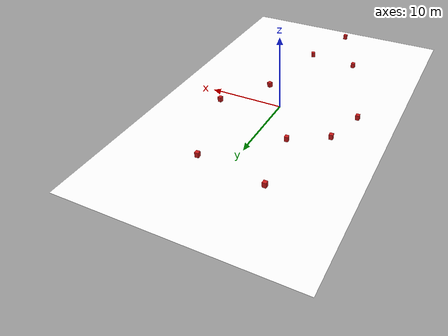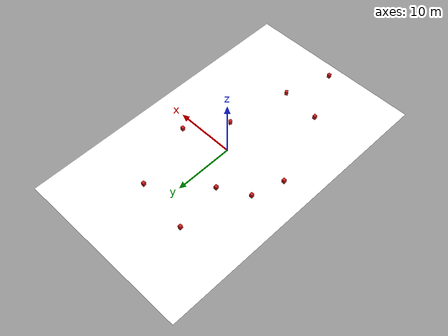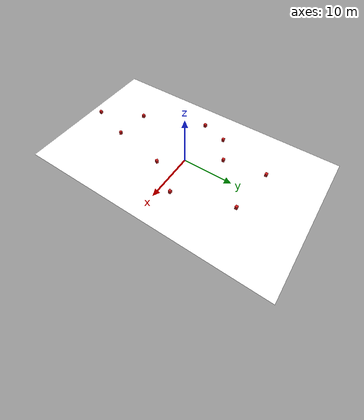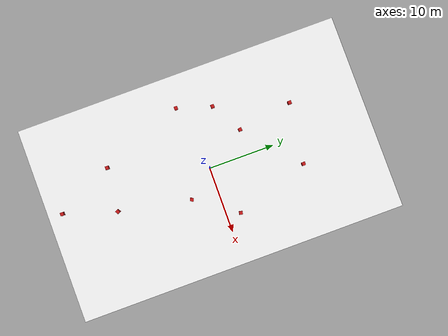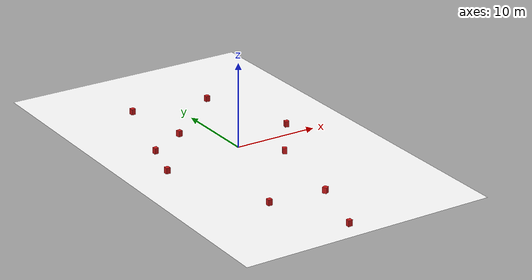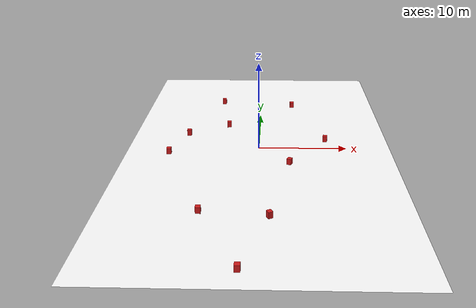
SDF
<sdf version="1.7">
 <world name="warehouse_line">
  <physics type="ode">
   <max_step_size>0.003</max_step_size>
   <real_time_factor>1.0</real_time_factor>
   <real_time_update_rate>1000</real_time_update_rate>
   <gravity>0 0 -9.8</gravity>
  </physics>
  <plugin name="gz::sim::systems::Physics" filename="libgz-sim-physics-system.so"/>
  <plugin name="gz::sim::systems::UserCommands" filename="libgz-sim-user-commands-system.so"/>
  <plugin name="gz::sim::systems::SceneBroadcaster" filename="libgz-sim-scene-broadcaster-system.so"/>
  <plugin name="gz::sim::systems::Sensors" filename="libgz-sim-sensors-system.so">
   <render_engine>ogre2</render_engine>
  </plugin>
  <plugin name="gz::sim::systems::Imu" filename="libgz-sim-imu-system.so"/>
  <plugin name="gz::sim::systems::NavSat" filename="libgz-sim-navsat-system.so"/>
  <scene>
   <ambient>1 1 1 1</ambient>
   <background>0.3 0.7 0.9 1</background>
   <shadows>0</shadows>
   <grid>false</grid>
  </scene>
  <spherical_coordinates>
   <surface_model>EARTH_WGS84</surface_model>
   <world_frame_orientation>ENU</world_frame_orientation>
   <latitude_deg>-22.986687</latitude_deg>
   <longitude_deg>-43.202501</longitude_deg>
   <elevation>0</elevation>
   <heading_deg>0</heading_deg>
  </spherical_coordinates>
  <model name="ground_plane">
   <static>true</static>
   <link name="link">
    <collision name="collision">
     <geometry><plane><normal>0.0 0.0 1</normal><size>1 1</size></plane></geometry>
    </collision>
   </link>
  </model>
  <include><uri>model://line_track</uri><name>line_track</name><pose>0 0 0.01 0 0 0</pose></include>
  <model name="obstacle_0">
   <static>true</static>
   <pose>-5.099 14.486 0.350 0 0 0.0000</pose>
   <link name="link">
    <collision name="collision"><geometry><box><size>0.5 0.5 0.7</size></box></geometry></collision>
    <visual name="visual">
     <geometry><box><size>0.5 0.5 0.7</size></box></geometry>
     <material>
      <ambient>0.8 0.1 0.1 1</ambient>
      <diffuse>0.8 0.1 0.1 1</diffuse>
      <specular>0.1 0.1 0.1 1</specular>
     </material>
    </visual>
   </link>
  </model>
  <model name="obstacle_1">
   <static>true</static>
   <pose>4.145 13.262 0.350 0 0 0.0000</pose>
   <link name="link">
    <collision name="collision"><geometry><box><size>0.5 0.5 0.7</size></box></geometry></collision>
    <visual name="visual">
     <geometry><box><size>0.5 0.5 0.7</size></box></geometry>
     <material>
      <ambient>0.8 0.1 0.1 1</ambient>
      <diffuse>0.8 0.1 0.1 1</diffuse>
      <specular>0.1 0.1 0.1 1</specular>
     </material>
    </visual>
   </link>
  </model>
  <model name="obstacle_2">
   <static>true</static>
   <pose>7.753 2.061 0.350 0 0 -0.1491</pose>
   <link name="link">
    <collision name="collision"><geometry><box><size>0.5 0.5 0.7</size></box></geometry></collision>
    <visual name="visual">
     <geometry><box><size>0.5 0.5 0.7</size></box></geometry>
     <material>
      <ambient>0.8 0.1 0.1 1</ambient>
      <diffuse>0.8 0.1 0.1 1</diffuse>
      <specular>0.1 0.1 0.1 1</specular>
     </material>
    </visual>
   </link>
  </model>
  <model name="obstacle_3">
   <static>true</static>
   <pose>3.429 -4.062 0.350 0 0 -1.9883</pose>
   <link name="link">
    <collision name="collision"><geometry><box><size>0.5 0.5 0.7</size></box></geometry></collision>
    <visual name="visual">
     <geometry><box><size>0.5 0.5 0.7</size></box></geometry>
     <material>
      <ambient>0.8 0.1 0.1 1</ambient>
      <diffuse>0.8 0.1 0.1 1</diffuse>
      <specular>0.1 0.1 0.1 1</specular>
     </material>
    </visual>
   </link>
  </model>
  <model name="obstacle_4">
   <static>true</static>
   <pose>1.342 -14.904 0.350 0 0 -1.0868</pose>
   <link name="link">
    <collision name="collision"><geometry><box><size>0.5 0.5 0.7</size></box></geometry></collision>
    <visual name="visual">
     <geometry><box><size>0.5 0.5 0.7</size></box></geometry>
     <material>
      <ambient>0.8 0.1 0.1 1</ambient>
      <diffuse>0.8 0.1 0.1 1</diffuse>
      <specular>0.1 0.1 0.1 1</specular>
     </material>
    </visual>
   </link>
  </model>
  <model name="obstacle_5">
   <static>true</static>
   <pose>-1.133 -22.730 0.350 0 0 3.1416</pose>
   <link name="link">
    <collision name="collision"><geometry><box><size>0.5 0.5 0.7</size></box></geometry></collision>
    <visual name="visual">
     <geometry><box><size>0.5 0.5 0.7</size></box></geometry>
     <material>
      <ambient>0.8 0.1 0.1 1</ambient>
      <diffuse>0.8 0.1 0.1 1</diffuse>
      <specular>0.1 0.1 0.1 1</specular>
     </material>
    </visual>
   </link>
  </model>
  <model name="obstacle_6">
   <static>true</static>
   <pose>-5.278 -14.217 0.350 0 0 1.5708</pose>
   <link name="link">
    <collision name="collision"><geometry><box><size>0.5 0.5 0.7</size></box></geometry></collision>
    <visual name="visual">
     <geometry><box><size>0.5 0.5 0.7</size></box></geometry>
     <material>
      <ambient>0.8 0.1 0.1 1</ambient>
      <diffuse>0.8 0.1 0.1 1</diffuse>
      <specular>0.1 0.1 0.1 1</specular>
     </material>
    </visual>
   </link>
  </model>
  <model name="obstacle_7">
   <static>true</static>
   <pose>-10.109 -1.643 0.350 0 0 3.1416</pose>
   <link name="link">
    <collision name="collision"><geometry><box><size>0.5 0.5 0.7</size></box></geometry></collision>
    <visual name="visual">
     <geometry><box><size>0.5 0.5 0.7</size></box></geometry>
     <material>
      <ambient>0.8 0.1 0.1 1</ambient>
      <diffuse>0.8 0.1 0.1 1</diffuse>
      <specular>0.1 0.1 0.1 1</specular>
     </material>
    </visual>
   </link>
  </model>
  <model name="obstacle_8">
   <static>true</static>
   <pose>-8.499 3.554 0.350 0 0 0.0499</pose>
   <link name="link">
    <collision name="collision"><geometry><box><size>0.5 0.5 0.7</size></box></geometry></collision>
    <visual name="visual">
     <geometry><box><size>0.5 0.5 0.7</size></box></geometry>
     <material>
      <ambient>0.8 0.1 0.1 1</ambient>
      <diffuse>0.8 0.1 0.1 1</diffuse>
      <specular>0.1 0.1 0.1 1</specular>
     </material>
    </visual>
   </link>
  </model>
  <model name="obstacle_9">
   <static>true</static>
   <pose>-3.847 6.213 0.350 0 0 -3.0364</pose>
   <link name="link">
    <collision name="collision"><geometry><box><size>0.5 0.5 0.7</size></box></geometry></collision>
    <visual name="visual">
     <geometry><box><size>0.5 0.5 0.7</size></box></geometry>
     <material>
      <ambient>0.8 0.1 0.1 1</ambient>
      <diffuse>0.8 0.1 0.1 1</diffuse>
      <specular>0.1 0.1 0.1 1</specular>
     </material>
    </visual>
   </link>
  </model>
 </world>
</sdf>

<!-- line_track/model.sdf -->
<sdf version="1.7">
  <model name="line_track">
    <static>true</static>
    <link name="track_link">
      <visual name="track_visual">
        <cast_shadows>false</cast_shadows>
        <geometry>
          <mesh>
            <uri>meshes/track_plane.obj</uri>
            <scale>1 1 1</scale>
          </mesh>
        </geometry>
        <material>
          <ambient>1 1 1 1</ambient>
          <diffuse>1 1 1 1</diffuse>
          <specular>0 0 0 1</specular>
          <pbr>
            <metal>
              <albedo_map>materials/textures/track_yellow.png</albedo_map>
              <metalness>0.0</metalness>
              <roughness>0.9</roughness>
            </metal>
          </pbr>
        </material>
        <transparency>0.0</transparency>
      </visual>
    </link>
  </model>
</sdf>
